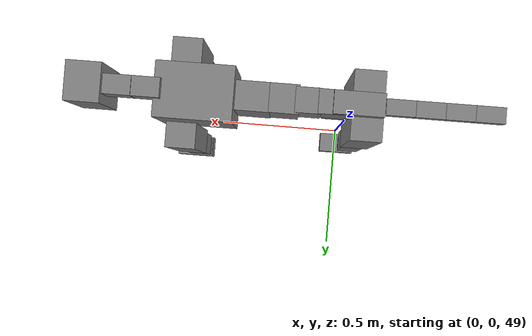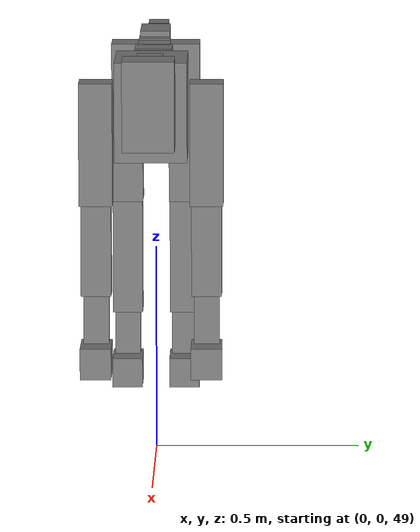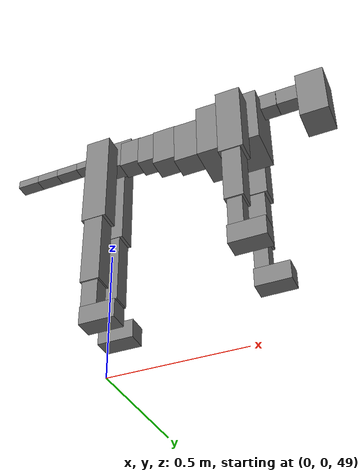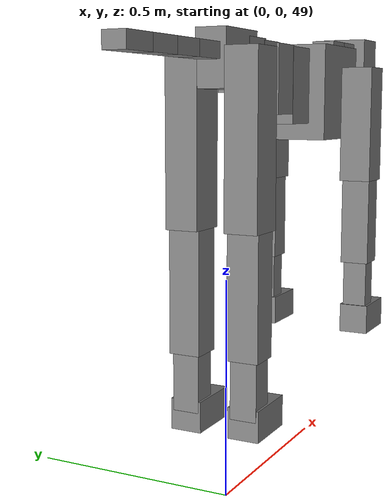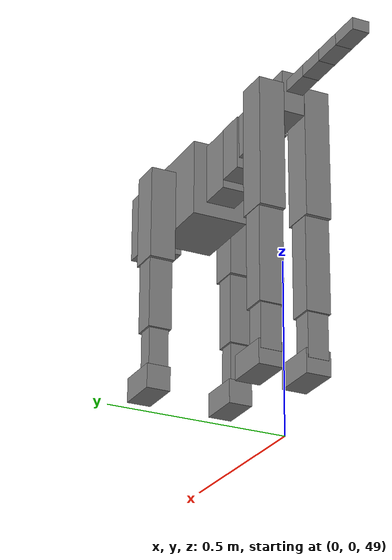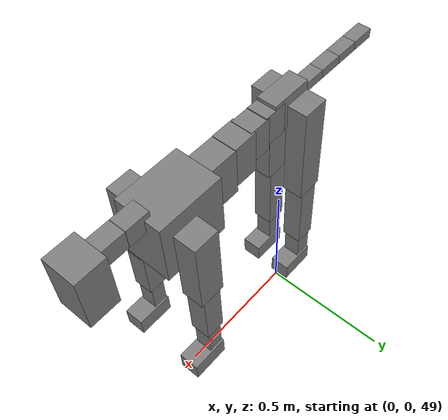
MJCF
<mujoco model="dog">

    <default>
        <joint armature="0.02" stiffness="1" damping="0.2" limited="true" />
        <geom condim="3" friction="1 0.05 0.05" margin="0.01" />
        <motor ctrllimited="true" ctrlrange="-1.0 1.0" forcelimited="true" gear="50" />
    </default>

    <compiler inertiafromgeom="true" angle="radian" />

    <option timestep="0.016" iterations="50" tolerance="1e-10" solver="Newton" jacobian="dense" cone="pyramidal" />

    <size nconmax="20000" njmax="60000" nstack="5000000" />
    <visual>
        <map force="0.1" zfar="30" />
        <rgba haze="0.15 0.25 0.35 1" />
        <quality shadowsize="2048" />
        <global offwidth="800" offheight="800" />
    </visual>

    <asset>
        <texture type="skybox" builtin="gradient" rgb1="0.3 0.5 0.7" rgb2="0 0 0" width="512" height="512" />
        <texture name="texplane" type="2d" builtin="checker" rgb1=".2 .3 .4" rgb2=".1 0.15 0.2" width="512" height="512" mark="cross" markrgb=".8 .8 .8" />
        <texture name="texgeom" type="cube" builtin="flat" mark="cross" width="127" height="1278" rgb1="0.8 0.6 0.4" rgb2="0.8 0.6 0.4" markrgb="1 1 1" random="0.01" />

        <material name="matplane" reflectance="0.3" texture="texplane" texrepeat="1 1" texuniform="true" />
        <material name="matgeom" texture="texgeom" texuniform="true" rgba="0.8 0.6 .4 1" />
    </asset>

    <worldbody>
        <geom name="floor" pos="0 0 0" size="0 0 .25" type="plane" material="matplane" condim="3" />

        <light directional="false" diffuse=".2 .2 .2" specular="0 0 0" pos="0 0 5" dir="0 0 -1" castshadow="false" />
        <light mode="targetbodycom" target="torso" directional="false" diffuse=".8 .8 .8" specular="0.3 0.3 0.3" pos="0 0 4.0" dir="0 0 -1" />

        <body name="root" pos="0 0 50">
            <freejoint name="root_1" />
            <geom type="box" pos="0 0 -0.02" size="0.0774  0.0358  0.063" density="2030" />

            <body name="spine1" pos="0.054 0 0">
                <joint name="spine1_y" axis="0 1 0" range="0 0.7" limited="true" />
                <geom type="box" pos="0.02375 0 -0.03" size="0.04375  0.0375  0.05985" density="2030" />

                <body name="spine2" pos="0.0612 0 0">
                    <joint name="spine2_y" axis="0 1 0" range="-0.15 0.15" limited="true" />
                    <geom type="box" pos="0.03555  0  -0.04" size="0.04055  0.039  0.06615" density="2030" />

                    <body name="spine3" pos="0.0730 0 0">
                        <joint name="spine3_y" axis="0 1 0" range="-0.15 0.15" limited="true" />
                        <geom type="box" pos="0.03555  0  -0.057" size="0.04555  0.0445  0.081" density="2030" />

                        <body name="spine4" pos="0.0780 0 0">
                            <joint name="spine4_y" axis="0 1 0" range="-0.15 0.15" limited="true" />
                            <geom type="box" pos="0.05265  0  -0.07" size="0.05265  0.045  0.09135" density="2030" />

                            <body name="torso" pos="0.1082 0 0">
                                <joint name="torso_y" axis="0 1 0" range="-0.15 0.15" limited="true" />
                                <geom type="box" pos="0.11925  0  -0.085" size="0.11925  0.085  0.11745" density="2030" />

                                <body name="neck1" pos="0.2160  0   0.0180">
                                    <joint name="neck1_y" axis="0 1 0" range="-1.2  -1" limited="true" />
                                    <geom type="box" pos="0.0423  0  0" size="0.0423  0.03  0.036" density="2325" />

                                    <body name="neck2" pos="0.0853  0  0">
                                        <joint name="neck2_y" axis="0 1 0" range="0.1  0" limited="true" />
                                        <geom type="box" pos="0.0423  0  0" size="0.0423  0.03  0.036" density="2325" />

                                        <body name="head" pos="0.0853  0  0">
                                            <joint name="head_y" axis="0 1 0" range="-0.3  -0.2" limited="true" />
                                            <geom type="box" pos="0.0531  0  -0.055" size="0.0531  0.06  0.1044" density="4030" />

                                        </body>
                                    </body>
                                </body>

                                <body name="front_shoulder" pos="0.156  0   -0.0480">
                                    <joint name="front_shoulder_y" axis="0 1 0" range="-1 1.5" limited="true" />
                                    <geom type="box" pos="0 0.13 -0.1178" size="0.0460  0.0393  0.1444" density="1158" />
                                    <geom type="box" pos="0 -0.13 -0.1178" size="0.0460  0.0393  0.1444" density="1158" />

                                    <body name="front_elbow" pos="0  0  -0.2356">
                                        <joint name="front_elbow_y" axis="0 1 0" range="-2 0" limited="true" />
                                        <geom type="box" pos="0 0.13 -0.1212" size="0.0348  0.0356  0.1212" density="1081" />
                                        <geom type="box" pos="0 -0.13 -0.1212" size="0.0348  0.0356  0.1212" density="1081" />

                                        <body name="front_wrist" pos="0  0  -0.2423">
                                            <joint name="front_wrist_y" axis="0 1 0" range="-0.2 0" limited="true" />
                                            <geom type="box" pos="0 0.13 -0.0643" size="0.0270  0.0300  0.0774" density="1664" />
                                            <geom type="box" pos="0 -0.13 -0.0643" size="0.0270  0.0300  0.0774" density="1664" />

                                            <body name="front_finger_end" pos="0  0  -0.1286">
                                                <joint name="front_finger_y" axis="0 1 0" range="-0.4 1" limited="true" />
                                                <geom type="box" pos="0.0364  0.13  -0.0218" size="0.0667  0.0364  0.0368" density="1515" />
                                                <geom type="box" pos="0.0364  -0.13  -0.0218" size="0.0667  0.0364  0.0368" density="1515" />

                                            </body>

                                        </body>
                                    </body>
                                </body>

                            </body>
                        </body>
                    </body>
                </body>
            </body>

            <body name="back_hip" pos="-0.03 0 -0.018">
                <joint name="back_hip_y" axis="0 1 0" range="-1.5 0.3" limited="true" />
                <geom type="box" pos="0 0.07 -0.1718" size="0.0486  0.0381  0.1946" density="1154" />
                <geom type="box" pos="0 -0.07 -0.1718" size="0.0486  0.0381  0.1946" density="1154" />

                <body name="back_knee" pos="0  0  -0.3436">
                    <joint name="back_knee_y" axis="0 1 0" range="0 2.8" limited="true" />
                    <geom type="box" pos="0 0.07 -0.1426" size="0.0369  0.0363  0.1581" density="1227" />
                    <geom type="box" pos="0 -0.07 -0.1426" size="0.0369  0.0363  0.1581" density="1227" />

                    <body name="back_ankle" pos="0  0  -0.2852">
                        <joint name="back_ankle_y" axis="0 1 0" range="-2.2 0" limited="true" />
                        <geom type="box" pos="0 0.07 -0.0676" size="0.0309  0.0309  0.0788" density="1284" />
                        <geom type="box" pos="0 -0.07 -0.0676" size="0.0309  0.0309  0.0788" density="1284" />

                        <body name="back_toe_end" pos="0  0  -0.1351">
                            <joint name="back_toe_y" axis="0 1 0" range="-0.4 1" limited="true" />
                            <geom type="box" pos="0.0366  0.07  -0.0204" size="0.0671  0.0366  0.0354" density="1515" />
                            <geom type="box" pos="0.0366  -0.07  -0.0204" size="0.0671  0.0366  0.0354" density="1515" />

                        </body>
                    </body>
                </body>
            </body>

            <body name="tail1" pos="-0.074 0 -0.006">
                <joint name="tail1_y" axis="0 1 0" range="-0.2 0.2" limited="true" />
                <geom type="box" pos="-0.0536  0  0" size="0.045  0.025  0.0175" density="1587" />

                <body name="tail2" pos="-0.09 0 0">
                    <joint name="tail2_y" axis="0 1 0" range="-0.2 0.2" limited="true" />
                    <geom type="box" pos="-0.0536  0  0" size="0.045  0.025  0.0175" density="1587" />

                    <body name="tail3" pos="-0.09 0 0">
                        <joint name="tail3_y" axis="0 1 0" range="-0.2 0.2" limited="true" />
                        <geom type="box" pos="-0.0536  0  0" size="0.045  0.025  0.0175" density="1587" />

                        <body name="tail4" pos="-0.09 0 0">
                            <joint name="tail4_y" axis="0 1 0" range="-0.2 0.2" limited="true" />
                            <geom type="box" pos="-0.0536  0  0" size="0.045  0.025  0.0175" density="1587" />

                        </body>
                    </body>
                </body>
            </body>
        </body>
    </worldbody>

    <actuator>
        <motor joint="spine1_y" forcerange="-150 150     " />
        <motor joint="spine2_y" forcerange="-150 150     " />
        <motor joint="spine3_y" forcerange="-150 150     " />
        <motor joint="spine4_y" forcerange="-150 150     " />
        <motor joint="torso_y" forcerange="-150 150     " />
        <motor joint="neck1_y" forcerange="-100 100       " />
        <motor joint="neck2_y" forcerange="-100 100       " />
        <motor joint="head_y" forcerange="-150 150       " />
        <motor joint="front_shoulder_y" forcerange="-188.51 173.67" />
        <motor joint="front_elbow_y" forcerange="-175.11 183.76" />
        <motor joint="front_wrist_y" forcerange="-139.31 101.07" />
        <motor joint="front_finger_y" forcerange="-89.92 64.09" />
        <motor joint="back_hip_y" forcerange="-379.36 329.22" />
        <motor joint="back_knee_y" forcerange="-330.07 398.30" />
        <motor joint="back_angle_y" forcerange="-230.08 163.97" />
        <motor joint="back_toe_y" forcerange="-112.93 99.84" />
        <motor joint="tail1_y" forcerange="-50 50     " />
        <motor joint="tail2_y" forcerange="-50 50     " />
        <motor joint="tail3_y" forcerange="-50 50     " />
        <motor joint="tail4_y" forcerange="-50 50     " />
    </actuator>
</mujoco>
